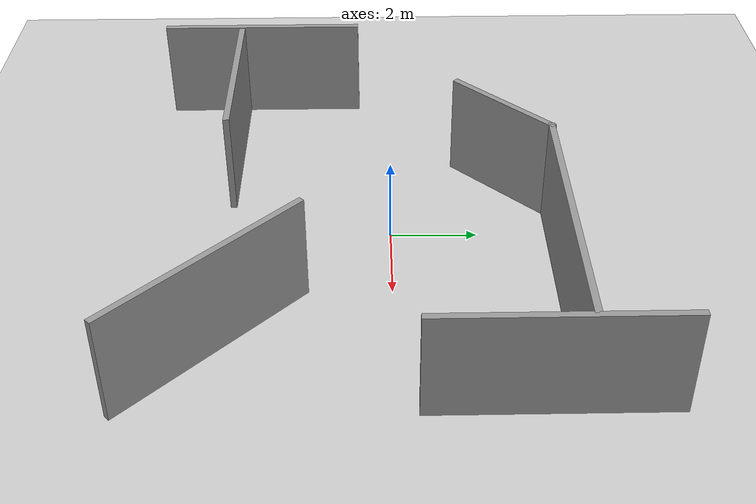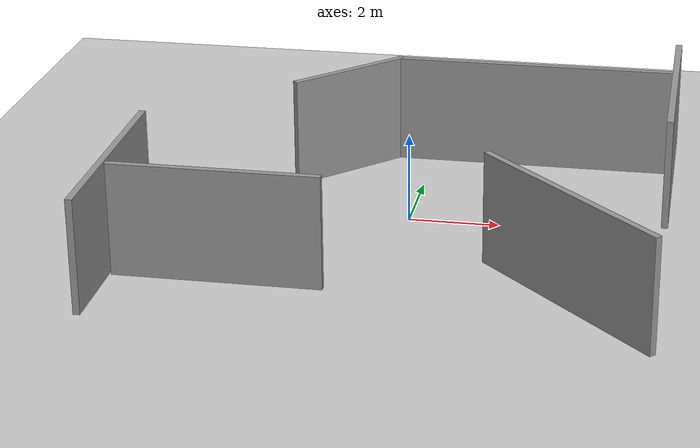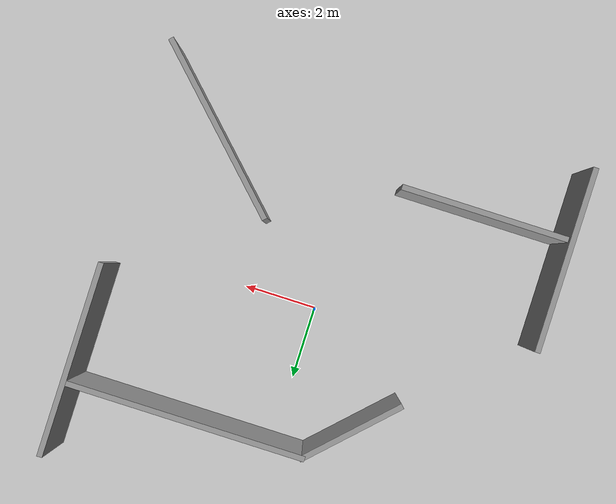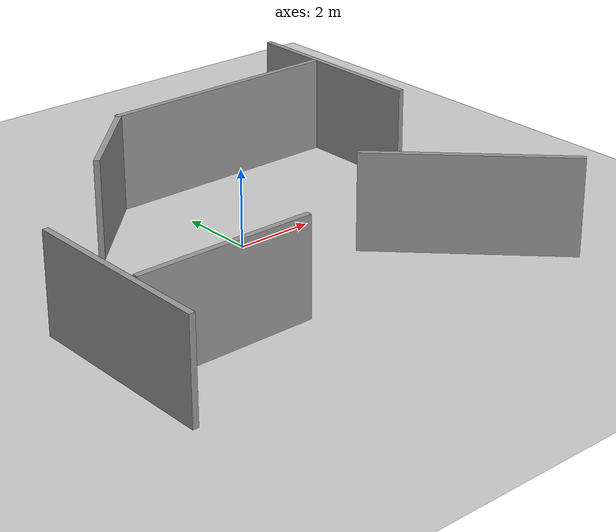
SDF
<sdf version="1.7">
 <world name="default">
  <light name="sun" type="directional">
   <pose>0 0 10 0 -0 0</pose>
   <diffuse>0.8 0.8 0.8 1</diffuse>
   <specular>0.2 0.2 0.2 1</specular>
   <attenuation>
    <range>1000</range>
    <constant>0.9</constant>
    <linear>0.01</linear>
    <quadratic>0.001</quadratic>
   </attenuation>
   <direction>-0.5 0.1 -0.9</direction>
   <spot><inner_angle>0</inner_angle><outer_angle>0</outer_angle><falloff>0</falloff></spot>
  </light>
  <model name="ground_plane">
   <static>1</static>
   <link name="link">
    <collision name="collision">
     <geometry><plane><normal>0 0 1</normal><size>100 100</size></plane></geometry>
     <surface>
      <contact><collide_bitmask>65535</collide_bitmask></contact>
      <friction><ode><mu>100</mu><mu2>50</mu2></ode></friction>
     </surface>
    </collision>
    <visual name="visual">
     <cast_shadows>0</cast_shadows>
     <geometry><plane><normal>0 0 1</normal><size>100 100</size></plane></geometry>
     <material>
      <script><uri>file://media/materials/scripts/gazebo.material</uri><name>Gazebo/Grey</name></script>
     </material>
    </visual>
   </link>
  </model>
  <gravity>0 0 -9.8</gravity>
  <magnetic_field>6e-06 2.3e-05 -4.2e-05</magnetic_field>
  <atmosphere type="adiabatic"/>
  <physics type="ode">
   <max_step_size>0.001</max_step_size>
   <real_time_factor>1</real_time_factor>
   <real_time_update_rate>1000</real_time_update_rate>
  </physics>
  <scene><ambient>0.4 0.4 0.4 1</ambient><background>0.7 0.7 0.7 1</background><shadows>1</shadows></scene>
  <spherical_coordinates>
   <surface_model>EARTH_WGS84</surface_model>
   <latitude_deg>0</latitude_deg>
   <longitude_deg>0</longitude_deg>
   <elevation>0</elevation>
   <heading_deg>0</heading_deg>
  </spherical_coordinates>
  <model name="savefile1">
   <pose>-0.084559 -0.020926 0 0 -0 0</pose>
   <link name="Wall_0">
    <collision name="Wall_0_Collision">
     <geometry><box><size>5 0.15 2.5</size></box></geometry>
     <pose>0 0 1.25 0 -0 0</pose>
    </collision>
    <visual name="Wall_0_Visual">
     <pose>0 0 1.25 0 -0 0</pose>
     <geometry><box><size>5 0.15 2.5</size></box></geometry>
     <material>
      <script><uri>file://media/materials/scripts/gazebo.material</uri><name>Gazebo/Grey</name></script>
      <ambient>1 1 1 1</ambient>
     </material>
     <meta><layer>0</layer></meta>
    </visual>
    <pose>-5.71181 -3.22125 0 0 -0 1.5708</pose>
   </link>
   <link name="Wall_10">
    <collision name="Wall_10_Collision">
     <geometry><box><size>5.25 0.15 2.5</size></box></geometry>
     <pose>0 0 1.25 0 -0 0</pose>
    </collision>
    <visual name="Wall_10_Visual">
     <pose>0 0 1.25 0 -0 0</pose>
     <geometry><box><size>5.25 0.15 2.5</size></box></geometry>
     <material>
      <script><uri>file://media/materials/scripts/gazebo.material</uri><name>Gazebo/Grey</name></script>
      <ambient>1 1 1 1</ambient>
     </material>
     <meta><layer>0</layer></meta>
    </visual>
    <pose>3.87763 -3.72031 0 0 -0 -0.785398</pose>
   </link>
   <link name="Wall_2">
    <collision name="Wall_2_Collision">
     <geometry><box><size>4.5 0.15 2.5</size></box></geometry>
     <pose>0 0 1.25 0 -0 0</pose>
    </collision>
    <visual name="Wall_2_Visual">
     <pose>0 0 1.25 0 -0 0</pose>
     <geometry><box><size>4.5 0.15 2.5</size></box></geometry>
     <material>
      <script><uri>file://media/materials/scripts/gazebo.material</uri><name>Gazebo/Grey</name></script>
      <ambient>1 1 1 1</ambient>
     </material>
     <meta><layer>0</layer></meta>
    </visual>
    <pose>-3.34591 -3.73502 0 0 -0 3.14159</pose>
   </link>
   <link name="Wall_4">
    <collision name="Wall_4_Collision">
     <geometry><box><size>5.25 0.15 2.5</size></box></geometry>
     <pose>0 0 1.25 0 -0 0</pose>
    </collision>
    <visual name="Wall_4_Visual">
     <pose>0 0 1.25 0 -0 0</pose>
     <geometry><box><size>5.25 0.15 2.5</size></box></geometry>
     <material>
      <script><uri>file://media/materials/scripts/gazebo.material</uri><name>Gazebo/Grey</name></script>
      <ambient>1 1 1 1</ambient>
     </material>
     <meta><layer>0</layer></meta>
    </visual>
    <pose>5.69792 3.09625 0 0 -0 -1.5708</pose>
   </link>
   <link name="Wall_6">
    <collision name="Wall_6_Collision">
     <geometry><box><size>6.5 0.15 2.5</size></box></geometry>
     <pose>0 0 1.25 0 -0 0</pose>
    </collision>
    <visual name="Wall_6_Visual">
     <pose>0 0 1.25 0 -0 0</pose>
     <geometry><box><size>6.5 0.15 2.5</size></box></geometry>
     <material>
      <script><uri>file://media/materials/scripts/gazebo.material</uri><name>Gazebo/Grey</name></script>
      <ambient>1 1 1 1</ambient>
     </material>
     <meta><layer>0</layer></meta>
    </visual>
    <pose>2.41738 3.71142 0 0 -0 3.14159</pose>
   </link>
   <link name="Wall_8">
    <collision name="Wall_8_Collision">
     <geometry><box><size>3 0.15 2.5</size></box></geometry>
     <pose>0 0 1.25 0 -0 0</pose>
    </collision>
    <visual name="Wall_8_Visual">
     <pose>0 0 1.25 0 -0 0</pose>
     <geometry><box><size>3 0.15 2.5</size></box></geometry>
     <material>
      <script><uri>file://media/materials/scripts/gazebo.material</uri><name>Gazebo/Grey</name></script>
      <ambient>1 1 1 1</ambient>
     </material>
     <meta><layer>0</layer></meta>
    </visual>
    <pose>-1.76525 2.70379 0 0 -0 -2.35619</pose>
   </link>
   <static>1</static>
  </model>
 </world>
</sdf>
